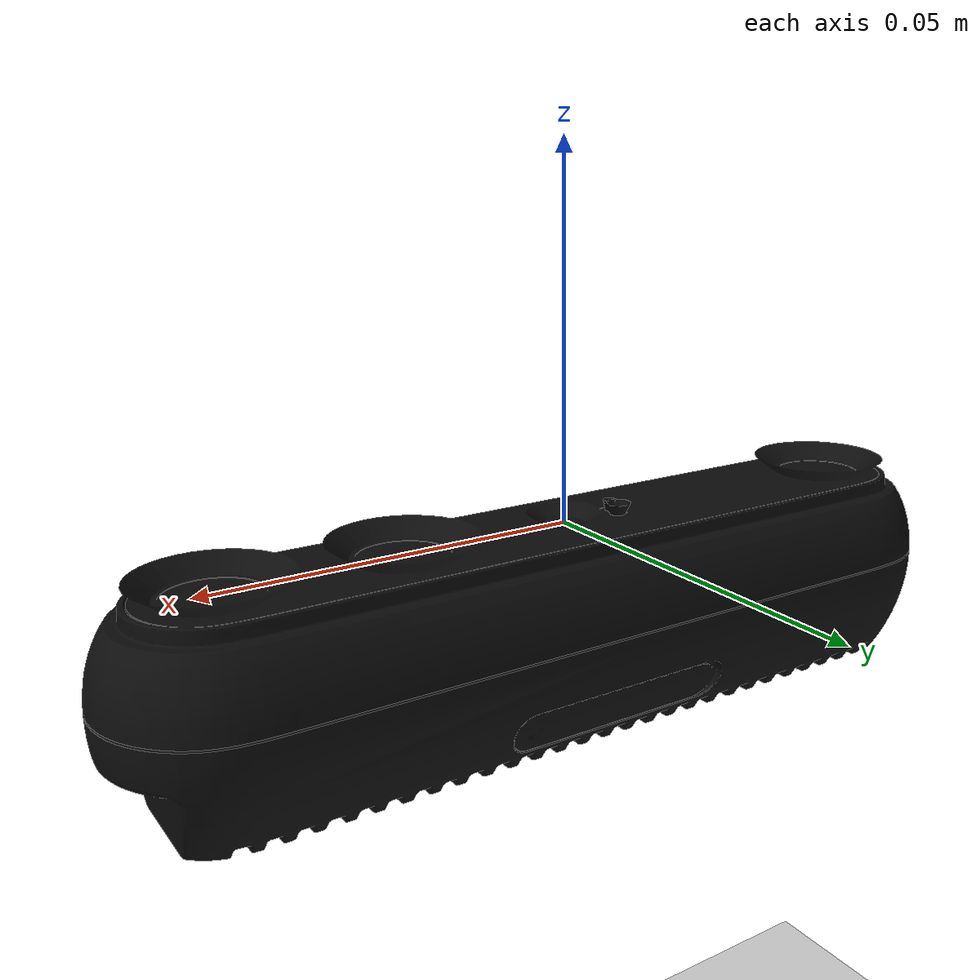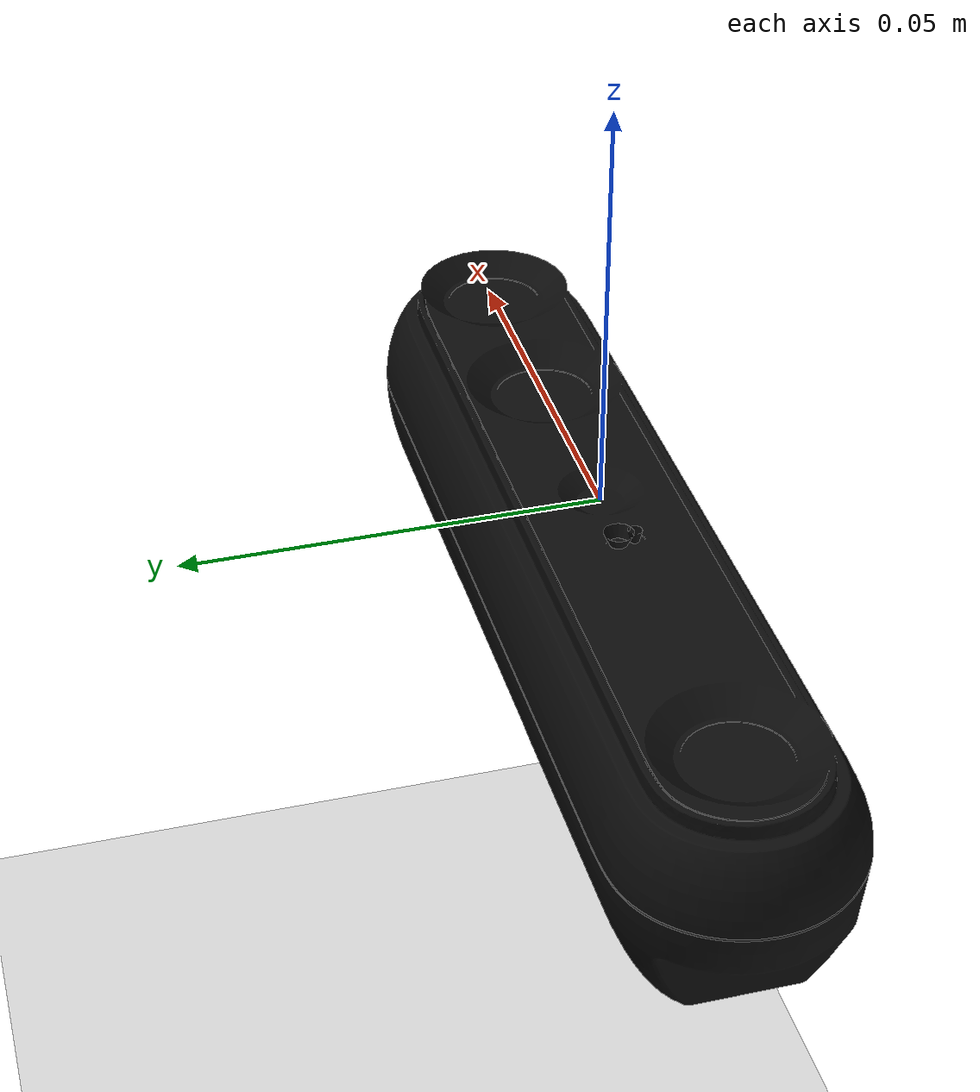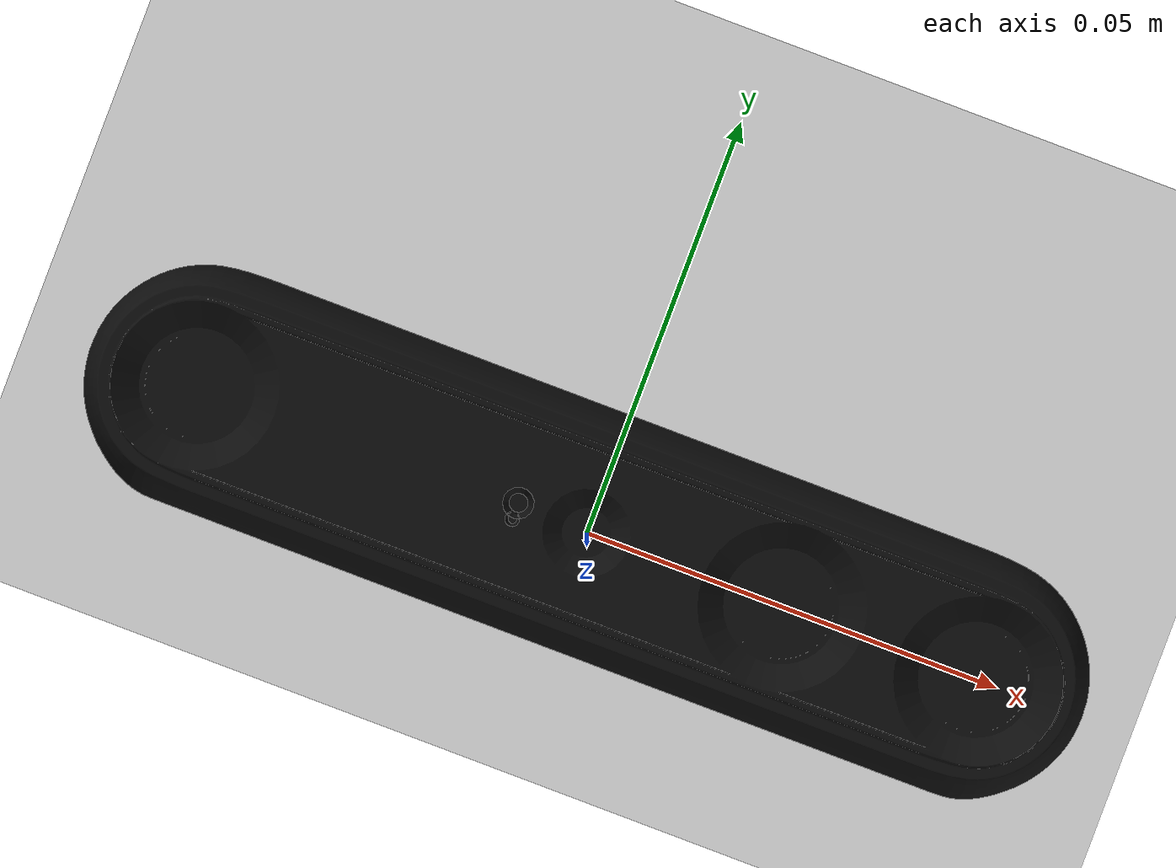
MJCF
<?xml version='1.0' encoding='utf-8'?>
<mujoco model="orbec_camera">
  <!--robola compile-->
  <compiler angle="radian" meshdir="../../assets/meshes/" />

  <asset>
    <texture type="skybox" colorspace="auto" name="texture_0_" builtin="checker" rgb1="0.96 0.96 0.96" rgb2="0.82 0.82 0.82" width="512" height="3072" />
    <texture type="2d" colorspace="auto" name="checker_tex" builtin="checker" mark="edge" rgb1="0.95 0.95 0.95" rgb2="0.78 0.78 0.78" markrgb="0.65 0.65 0.65" width="512" height="512" />
    <texture type="2d" colorspace="auto" name="orbec_tex" builtin="flat" rgb1="0.2 0.2 0.2" width="256" height="256" />
    <material name="checker_mat" texture="checker_tex" texuniform="true" texrepeat="8 8" reflectance="0.05" />
    <material name="orbec_mat" texture="orbec_tex" rgba="0.25 0.25 0.25 1" />
    <mesh name="orbec_cam_mesh" file="../../assets/meshes/camera/gemini335L.stl" scale="0.001 0.001 0.001" />
  </asset>

  <worldbody>
    <geom name="ground" size="0.5 0.5 0.0001" pos="0 0 -0.12" type="plane" contype="0" conaffinity="0" material="checker_mat" />
    <light name="key_light" pos="0 -0.2 0.25" dir="0 0 -1" type="directional" diffuse="1 1 1" specular="0.2 0.2 0.2" />
    <body name="orbec/base">
      <inertial pos="0 0 0" mass="0.08" diaginertia="5e-05 5e-05 5e-05" />
      <geom name="orbec/body" type="mesh" contype="0" conaffinity="0" group="2" material="orbec_mat" mesh="orbec_cam_mesh" />
      <site name="orbec/mount_site" pos="-0.000694608 -0.0138988 -0.0165486" quat="0.707107 -0.707107 0 0" size="0.003" group="5" rgba="0 1 0 1" />
      <site name="orbec/optical_site" pos="0 0 -0.00146158" size="0.003" group="5" rgba="1 0 0 1" />
      <camera name="orbec/rgb" pos="0 0 -0.00477038" quat="0 1 0 0" fovy="70" />
    </body>
  </worldbody>
</mujoco>
